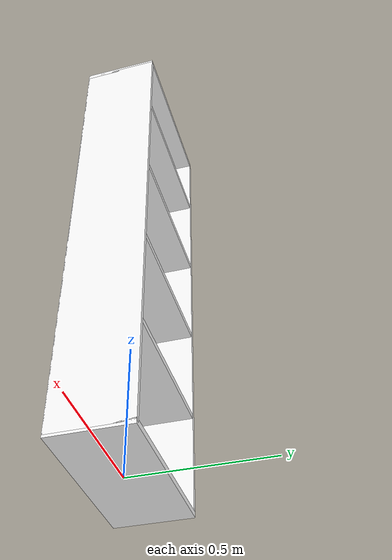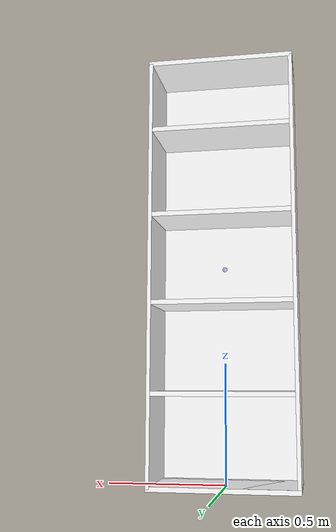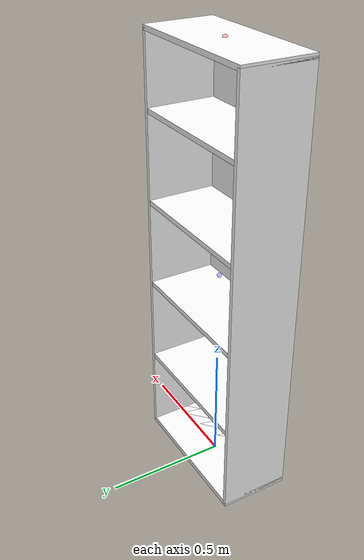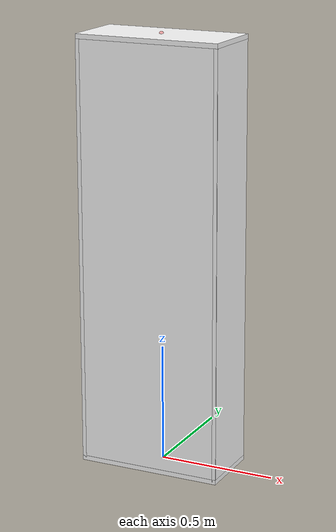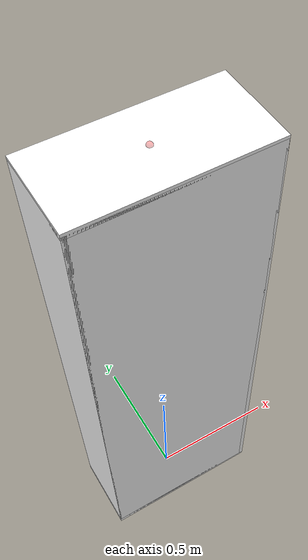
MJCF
<mujoco model="shelf">
  <compiler angle="degree" coordinate="local"/>
  <option gravity="0 0 -9.81"/>

  <asset>
    <texture name="white_tex" builtin="flat" rgb1="1 1 1" rgb2="1 1 1" width="32" height="32"/>
    <material name="white_mat" texture="white_tex" shininess="0.2" reflectance="0.05" rgba="1 1 1 1"/>
  </asset>

  <!-- H = 1.80797 m; shelf z = 0, 0.376660, 0.753321, 1.129981, 1.506642 -->
  <worldbody>
    <body>
      <body name="object" pos="0 0 0">
        <!-- Sides (centered at H/2) -->
        <geom name="side_left"  type="box"
              size="0.008255 0.146050 0.903985"
              pos="-0.302895 0 0.903985"
              contype="1" conaffinity="1" friction="1 0.1 0.01" density="700" group="0" rgba="0.8 0.8 0.8 0.0"/>
        <geom name="side_left_vis"  type="box" material="white_mat"
              size="0.008255 0.146050 0.903985"
              pos="-0.302895 0 0.903985"
              contype="0" conaffinity="0" group="1"/>
        <geom name="side_right" type="box"
              size="0.008255 0.146050 0.903985"
              pos="0.302895 0 0.903985"
              contype="1" conaffinity="1" friction="1 0.1 0.01" density="700" group="0" rgba="0.8 0.8 0.8 0.0"/>
        <geom name="side_right_vis" type="box" material="white_mat"
              size="0.008255 0.146050 0.903985"
              pos="0.302895 0 0.903985"
              contype="0" conaffinity="0" group="1"/>

        <!-- Top & bottom panels (centers) -->
        <geom name="top" type="box"
              size="0.311150 0.146050 0.010160"
              pos="0 0 1.807970"
              contype="1" conaffinity="1" friction="1 0.1 0.01" density="700" group="0" rgba="0.8 0.8 0.8 0.0"/>
        <geom name="top_vis" type="box" material="white_mat"
              size="0.311150 0.146050 0.010160"
              pos="0 0 1.807970"
              contype="0" conaffinity="0" group="1"/>
        <geom name="bottom" type="box"
              size="0.311150 0.146050 0.010160"
              pos="0 0 0.000000"
              contype="1" conaffinity="1" friction="1 0.1 0.01" density="700" group="0" rgba="0.8 0.8 0.8 0.0"/>
        <geom name="bottom_vis" type="box" material="white_mat"
              size="0.311150 0.146050 0.010160"
              pos="0 0 0.000000"
              contype="0" conaffinity="0" group="1"/>

        <!-- Back panel -->
        <geom name="back" type="box"
              size="0.311150 0.001270 0.903985"
              pos="0 -0.144780 0.903985"
              contype="1" conaffinity="1" friction="1 0.1 0.01" density="700" group="0" rgba="0.8 0.8 0.8 0.0"/>
        <geom name="back_vis" type="box" material="white_mat"
              size="0.311150 0.001270 0.903985"
              pos="0 -0.144780 0.903985"
              contype="0" conaffinity="0" group="1"/>

        <!-- Interior shelves (5, evenly spaced from 0 to 5H/6) -->
        <!-- Shelf half-sizes: x=0.294640, y=0.144780, z=0.010160 -->
        <geom name="shelf_1" type="box"
              size="0.294640 0.144780 0.010160"
              pos="0 0 0.000000"
              contype="1" conaffinity="1" friction="1 0.1 0.01" density="700" group="0" rgba="0.8 0.8 0.8 0.0"/>
        <geom name="shelf_1_vis" type="box" material="white_mat"
              size="0.294640 0.144780 0.010160"
              pos="0 0 0.000000"
              contype="0" conaffinity="0" group="1"/>
        <geom name="shelf_2" type="box"
              size="0.294640 0.144780 0.010160"
              pos="0 0 0.376660"
              contype="1" conaffinity="1" friction="1 0.1 0.01" density="700" group="0" rgba="0.8 0.8 0.8 0.0"/>
        <geom name="shelf_2_vis" type="box" material="white_mat"
              size="0.294640 0.144780 0.010160"
              pos="0 0 0.376660"
              contype="0" conaffinity="0" group="1"/>
        <geom name="shelf_3" type="box"
              size="0.294640 0.144780 0.010160"
              pos="0 0 0.753321"
              contype="1" conaffinity="1" friction="1 0.1 0.01" density="700" group="0" rgba="0.8 0.8 0.8 0.0"/>
        <geom name="shelf_3_vis" type="box" material="white_mat"
              size="0.294640 0.144780 0.010160"
              pos="0 0 0.753321"
              contype="0" conaffinity="0" group="1"/>
        <geom name="shelf_4" type="box"
              size="0.294640 0.144780 0.010160"
              pos="0 0 1.129981"
              contype="1" conaffinity="1" friction="1 0.1 0.01" density="700" group="0" rgba="0.8 0.8 0.8 0.0"/>
        <geom name="shelf_4_vis" type="box" material="white_mat"
              size="0.294640 0.144780 0.010160"
              pos="0 0 1.129981"
              contype="0" conaffinity="0" group="1"/>
        <geom name="shelf_5" type="box"
              size="0.294640 0.144780 0.010160"
              pos="0 0 1.506642"
              contype="1" conaffinity="1" friction="1 0.1 0.01" density="700" group="0" rgba="0.8 0.8 0.8 0.0"/>
        <geom name="shelf_5_vis" type="box" material="white_mat"
              size="0.294640 0.144780 0.010160"
              pos="0 0 1.506642"
              contype="0" conaffinity="0" group="1"/>

      </body>
        <!-- Sites for reference points -->
        <site name="top_site" pos="0 0 1.817970" size="0.01 0.01 0.01" rgba="1 0 0 0.3"/>
        <site name="bottom_site" pos="0 0 0.000000" size="0.01 0.01 0.01" rgba="0 1 0 0.3"/>
        <site name="horizontal_radius_site" pos="0 0 0.903985" size="0.01 0.01 0.01" rgba="0 0 1 0.3"/>
    </body>
  </worldbody>
</mujoco>
